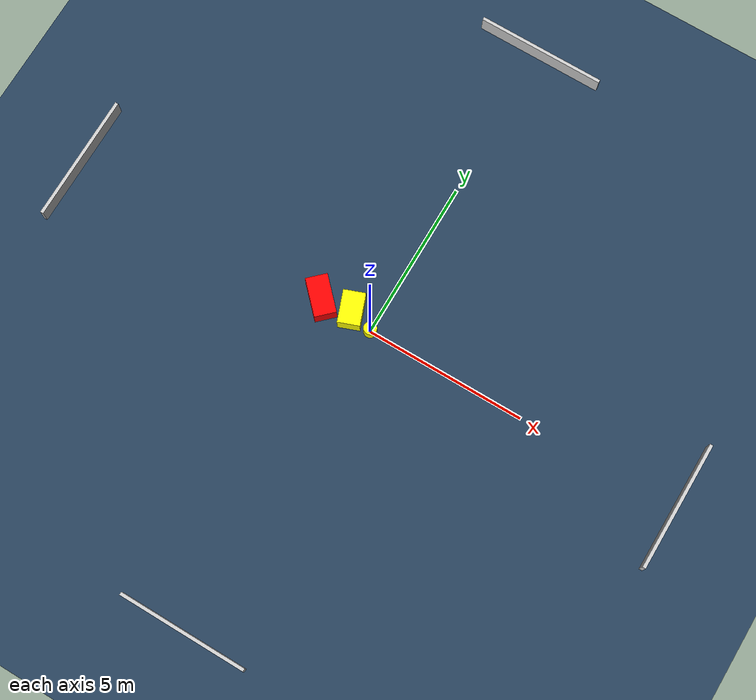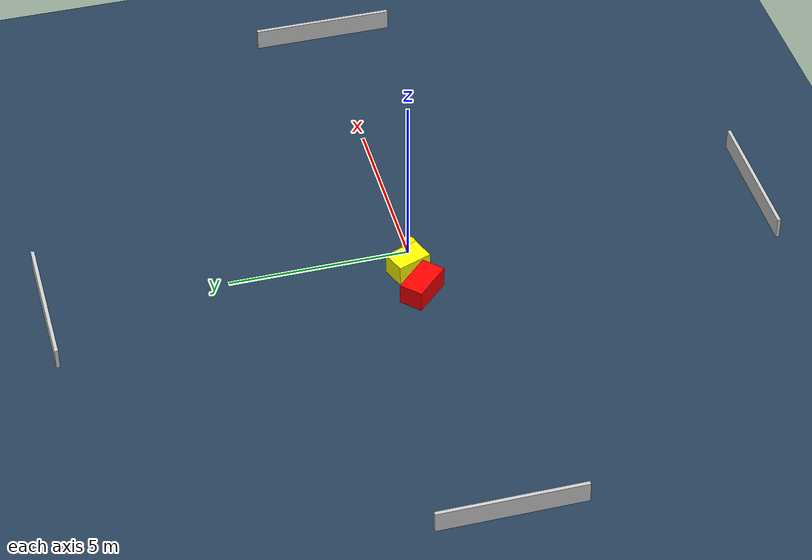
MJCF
<?xml version="1.0" ?>
<mujoco model="generated_environment">
  <option timestep="0.01" integrator="RK4" cone="elliptic"/>
  <default>
    <geom density="1"/>
  </default>
  <asset>
    <texture builtin="gradient" height="3072" name="skybox" rgb1="0.3 0.5 0.7" rgb2="0 0 0" type="skybox" width="512"/>
    <texture builtin="checker" height="300" name="groundplane" rgb1="0.2 0.3 0.4" rgb2="0.1 0.2 0.3" type="2d" width="300"/>
    <material name="groundplane" reflectance="0.2" texrepeat="5 5" texture="groundplane"/>
  </asset>
  <worldbody>
    <light dir="0 0 -1" directional="true" pos="0 0 1.5"/>
    <geom condim="3" friction="0.5 0.005 0.001" material="groundplane" name="floor" pos="0 0 0" size="0 0 0.05" type="plane"/>
    <body name="walls">
      <geom name="wall_1" condim="4" pos="-10.0 0.0 0.3" rgba="0.800000011920929 0.800000011920929 0.800000011920929 1.0" size="0.05 2.0 0.3" type="box"/>
      <geom name="wall_2" condim="4" pos="10.0 0.0 0.3" rgba="0.800000011920929 0.800000011920929 0.800000011920929 1.0" size="0.05 2.0 0.3" type="box"/>
      <geom name="wall_3" condim="4" pos="0.0 -10.0 0.3" rgba="0.800000011920929 0.800000011920929 0.800000011920929 1.0" size="2.0 0.05 0.3" type="box"/>
      <geom name="wall_4" condim="4" pos="0.0 10.0 0.3" rgba="0.800000011920929 0.800000011920929 0.800000011920929 1.0" size="2.0 0.05 0.3" type="box"/>
    </body>
    <body name="robot">
      <joint name="joint_x" type="slide" pos="0 0 0" axis="1 0 0"/>
      <joint name="joint_y" type="slide" pos="0 0 0" axis="0 1 0"/>
      <geom name="robot" type="cylinder" pos="0.0 0.0 0.2" size="0.2 0.2 0.0" mass="5.0" friction="1.0 0.005 0.0001" condim="4" rgba="1.0 1.0 0.0 1.0"/>
    </body>
    <body name="obstacle_1_movable">
      <geom name="obstacle_1_movable" condim="4" pos="-0.7493506241210575 0.2047001002651149 0.3" euler="0 0 110.56704012855393" friction="0.0 0.005 0.001" rgba="1.0 1.0 0.0 1.0" size="0.49931574734976636 0.3368739809723281 0.3" type="box" mass="0.1"/>
      <joint type="free"/>
    </body>
    <body name="obstacle_2_static">
      <geom name="obstacle_2_static" condim="4" pos="-1.6994876884947967 0.06714071301005559 0.3" euler="0 0 224.2140145013848" friction="0.0 0.005 0.001" rgba="1.0 0.0 0.0 1.0" size="0.33385297893795596 0.5957182934297091 0.3" type="box"/>
    </body>
  </worldbody>
  <actuator>
    <motor name="actuator_x" joint="joint_x" gear="1" ctrlrange="-1 1"/>
    <motor name="actuator_y" joint="joint_y" gear="1" ctrlrange="-1 1"/>
  </actuator>
</mujoco>
